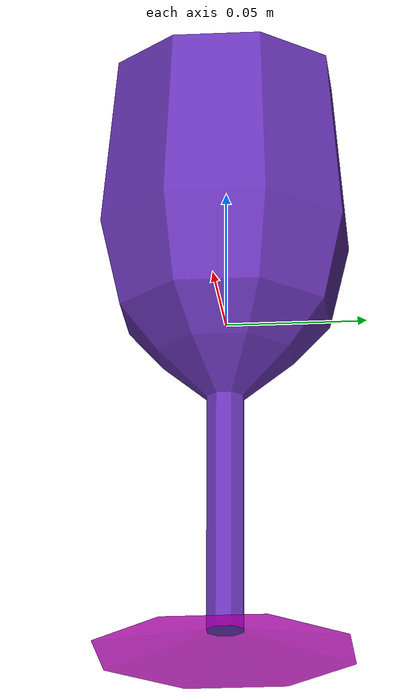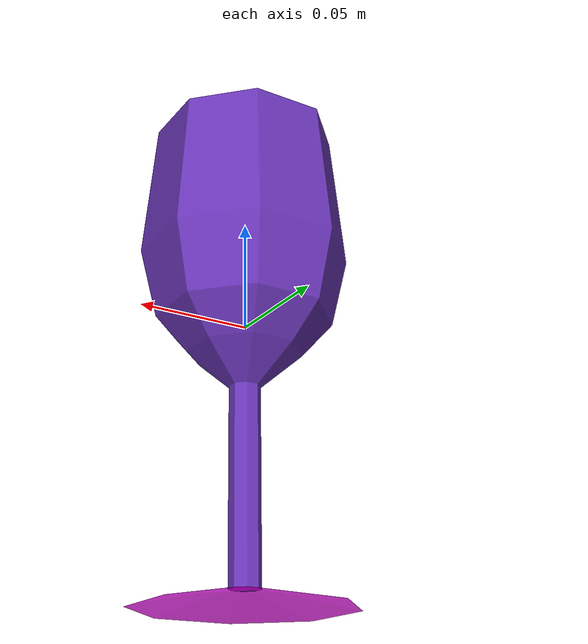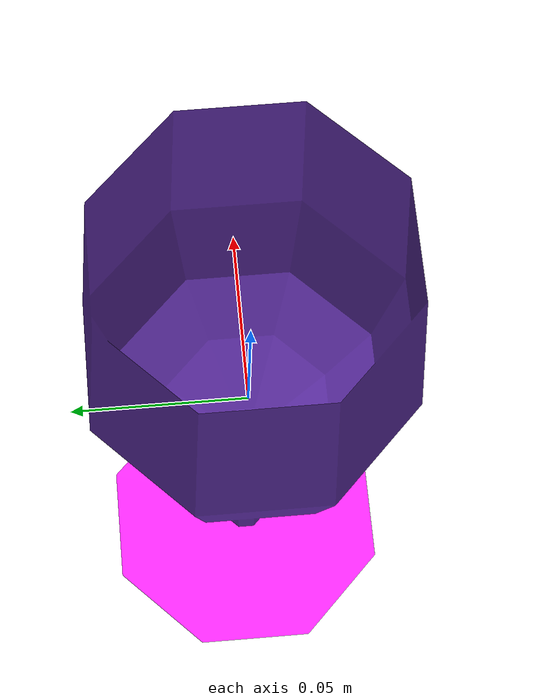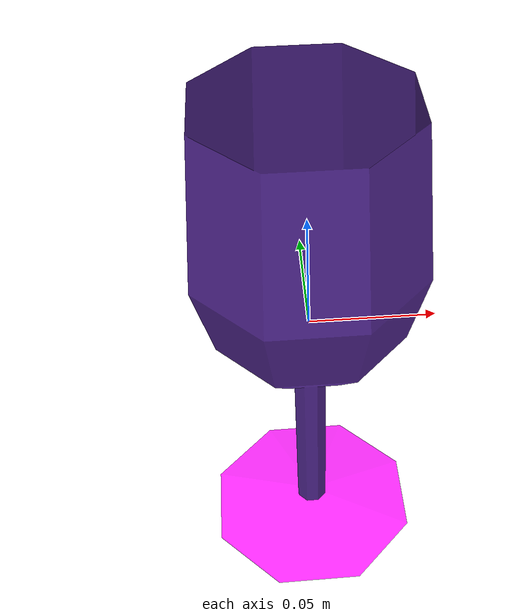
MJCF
<?xml version="1.0" encoding="utf-8"?>
<mujoco model="top_watertight_tiny">

  <asset>

    <mesh file="top_watertight_tiny.obj"/>

    <mesh file="top_watertight_tiny_collision_0.obj"/>

    <mesh file="top_watertight_tiny_collision_1.obj"/>

    <mesh file="top_watertight_tiny_collision_2.obj"/>

    <mesh file="top_watertight_tiny_collision_3.obj"/>

    <mesh file="top_watertight_tiny_collision_4.obj"/>

    <mesh file="top_watertight_tiny_collision_5.obj"/>

    <mesh file="top_watertight_tiny_collision_6.obj"/>

    <mesh file="top_watertight_tiny_collision_7.obj"/>

    <mesh file="top_watertight_tiny_collision_8.obj"/>

    <mesh file="top_watertight_tiny_collision_9.obj"/>

    <mesh file="top_watertight_tiny_collision_10.obj"/>

    <mesh file="top_watertight_tiny_collision_11.obj"/>

    <mesh file="top_watertight_tiny_collision_12.obj"/>

    <mesh file="top_watertight_tiny_collision_13.obj"/>

    <mesh file="top_watertight_tiny_collision_14.obj"/>

    <mesh file="top_watertight_tiny_collision_15.obj"/>

    <mesh file="top_watertight_tiny_collision_16.obj"/>

    <mesh file="top_watertight_tiny_collision_17.obj"/>

    <mesh file="top_watertight_tiny_collision_18.obj"/>

    <mesh file="top_watertight_tiny_collision_19.obj"/>

    <mesh file="top_watertight_tiny_collision_20.obj"/>

    <mesh file="top_watertight_tiny_collision_21.obj"/>

    <mesh file="top_watertight_tiny_collision_22.obj"/>

    <mesh file="top_watertight_tiny_collision_23.obj"/>

    <mesh file="top_watertight_tiny_collision_24.obj"/>

    <mesh file="top_watertight_tiny_collision_25.obj"/>

    <mesh file="top_watertight_tiny_collision_26.obj"/>

    <mesh file="top_watertight_tiny_collision_27.obj"/>

    <mesh file="top_watertight_tiny_collision_28.obj"/>

    <mesh file="bottom_watertight_tiny.obj"/>

    <mesh file="bottom_watertight_tiny_collision_0.obj"/>

    <mesh file="bottom_watertight_tiny_collision_1.obj"/>

    <mesh file="bottom_watertight_tiny_collision_2.obj"/>

    <mesh file="bottom_watertight_tiny_collision_3.obj"/>

    <mesh file="bottom_watertight_tiny_collision_4.obj"/>

    <mesh file="bottom_watertight_tiny_collision_5.obj"/>

    <mesh file="bottom_watertight_tiny_collision_6.obj"/>

    <mesh file="bottom_watertight_tiny_collision_7.obj"/>

  </asset>

  <worldbody>

    <body name="top_watertight_tiny">

      <freejoint/>

      <geom mesh="top_watertight_tiny" group="2" type="mesh" rgba="0.4 0.2 0.7 1" contype="0" conaffinity="0" solimp="0.90 0.95 0.001" solref="0.02 1.0" density="100" friction="0.95 0.4 0.3"/>

      <geom mesh="top_watertight_tiny_collision_0" rgba="0.5061355728934185 0.8679102062915278 0.9900890656890042 1" group="3" type="mesh" solimp="0.90 0.95 0.001" solref="0.02 1.0" density="100" friction="0.95 0.4 0.3"/>

      <geom mesh="top_watertight_tiny_collision_1" rgba="0.25180977776260116 0.8325517480377893 0.2783884431691288 1" group="3" type="mesh" solimp="0.90 0.95 0.001" solref="0.02 1.0" density="100" friction="0.95 0.4 0.3"/>

      <geom mesh="top_watertight_tiny_collision_2" rgba="0.9534853073205125 0.9107056148574261 0.5468915524469985 1" group="3" type="mesh" solimp="0.90 0.95 0.001" solref="0.02 1.0" density="100" friction="0.95 0.4 0.3"/>

      <geom mesh="top_watertight_tiny_collision_3" rgba="0.6871921209617848 0.5774473325304041 0.5099105485004797 1" group="3" type="mesh" solimp="0.90 0.95 0.001" solref="0.02 1.0" density="100" friction="0.95 0.4 0.3"/>

      <geom mesh="top_watertight_tiny_collision_4" rgba="0.13059483541182604 0.3560753646243745 0.5800725158714763 1" group="3" type="mesh" solimp="0.90 0.95 0.001" solref="0.02 1.0" density="100" friction="0.95 0.4 0.3"/>

      <geom mesh="top_watertight_tiny_collision_5" rgba="0.2823909337965186 0.7678204446008545 0.7412892407305172 1" group="3" type="mesh" solimp="0.90 0.95 0.001" solref="0.02 1.0" density="100" friction="0.95 0.4 0.3"/>

      <geom mesh="top_watertight_tiny_collision_6" rgba="0.17109070123238612 0.6475526964141758 0.17947177858328933 1" group="3" type="mesh" solimp="0.90 0.95 0.001" solref="0.02 1.0" density="100" friction="0.95 0.4 0.3"/>

      <geom mesh="top_watertight_tiny_collision_7" rgba="0.1776335603229463 0.5115044179854125 0.3849732638623129 1" group="3" type="mesh" solimp="0.90 0.95 0.001" solref="0.02 1.0" density="100" friction="0.95 0.4 0.3"/>

      <geom mesh="top_watertight_tiny_collision_8" rgba="0.3338396071940164 0.29456063181120784 0.2305261008523558 1" group="3" type="mesh" solimp="0.90 0.95 0.001" solref="0.02 1.0" density="100" friction="0.95 0.4 0.3"/>

      <geom mesh="top_watertight_tiny_collision_9" rgba="0.9267985719331097 0.21675851641262878 0.7339446497021224 1" group="3" type="mesh" solimp="0.90 0.95 0.001" solref="0.02 1.0" density="100" friction="0.95 0.4 0.3"/>

      <geom mesh="top_watertight_tiny_collision_10" rgba="0.9321378177014608 0.9757029294452854 0.03807946440777421 1" group="3" type="mesh" solimp="0.90 0.95 0.001" solref="0.02 1.0" density="100" friction="0.95 0.4 0.3"/>

      <geom mesh="top_watertight_tiny_collision_11" rgba="0.4506825925516469 0.8984429096076894 0.33763605158646304 1" group="3" type="mesh" solimp="0.90 0.95 0.001" solref="0.02 1.0" density="100" friction="0.95 0.4 0.3"/>

      <geom mesh="top_watertight_tiny_collision_12" rgba="0.5519328832623617 0.2078571398007647 0.7508963026776057 1" group="3" type="mesh" solimp="0.90 0.95 0.001" solref="0.02 1.0" density="100" friction="0.95 0.4 0.3"/>

      <geom mesh="top_watertight_tiny_collision_13" rgba="0.604514033990188 0.10948284031421163 0.5312494238734738 1" group="3" type="mesh" solimp="0.90 0.95 0.001" solref="0.02 1.0" density="100" friction="0.95 0.4 0.3"/>

      <geom mesh="top_watertight_tiny_collision_14" rgba="0.907270237851841 0.8694089232146164 0.9893086633694564 1" group="3" type="mesh" solimp="0.90 0.95 0.001" solref="0.02 1.0" density="100" friction="0.95 0.4 0.3"/>

      <geom mesh="top_watertight_tiny_collision_15" rgba="0.8418658763870013 0.9593538245166423 0.865603762373428 1" group="3" type="mesh" solimp="0.90 0.95 0.001" solref="0.02 1.0" density="100" friction="0.95 0.4 0.3"/>

      <geom mesh="top_watertight_tiny_collision_16" rgba="0.3120416399646291 0.32198699133730113 0.3155101782310109 1" group="3" type="mesh" solimp="0.90 0.95 0.001" solref="0.02 1.0" density="100" friction="0.95 0.4 0.3"/>

      <geom mesh="top_watertight_tiny_collision_17" rgba="0.1850248350248872 0.8591346777173561 0.9064556984131418 1" group="3" type="mesh" solimp="0.90 0.95 0.001" solref="0.02 1.0" density="100" friction="0.95 0.4 0.3"/>

      <geom mesh="top_watertight_tiny_collision_18" rgba="0.9585851374266061 0.6772565830913527 0.4588238486214883 1" group="3" type="mesh" solimp="0.90 0.95 0.001" solref="0.02 1.0" density="100" friction="0.95 0.4 0.3"/>

      <geom mesh="top_watertight_tiny_collision_19" rgba="0.017524486964935138 0.6549546315930781 0.4160860686676767 1" group="3" type="mesh" solimp="0.90 0.95 0.001" solref="0.02 1.0" density="100" friction="0.95 0.4 0.3"/>

      <geom mesh="top_watertight_tiny_collision_20" rgba="0.1200642874343586 0.6722257756072832 0.7846901319479702 1" group="3" type="mesh" solimp="0.90 0.95 0.001" solref="0.02 1.0" density="100" friction="0.95 0.4 0.3"/>

      <geom mesh="top_watertight_tiny_collision_21" rgba="0.1083593102763295 0.405094709531163 0.7468737563354259 1" group="3" type="mesh" solimp="0.90 0.95 0.001" solref="0.02 1.0" density="100" friction="0.95 0.4 0.3"/>

      <geom mesh="top_watertight_tiny_collision_22" rgba="0.7151730488438774 0.3231626746766981 0.0979056761069137 1" group="3" type="mesh" solimp="0.90 0.95 0.001" solref="0.02 1.0" density="100" friction="0.95 0.4 0.3"/>

      <geom mesh="top_watertight_tiny_collision_23" rgba="0.2576638243710828 0.2846448581845533 0.2603349427553462 1" group="3" type="mesh" solimp="0.90 0.95 0.001" solref="0.02 1.0" density="100" friction="0.95 0.4 0.3"/>

      <geom mesh="top_watertight_tiny_collision_24" rgba="0.9739724375790678 0.8161682018403691 0.15433912642355463 1" group="3" type="mesh" solimp="0.90 0.95 0.001" solref="0.02 1.0" density="100" friction="0.95 0.4 0.3"/>

      <geom mesh="top_watertight_tiny_collision_25" rgba="0.31605473827820785 0.21464793527813164 0.19427954088775 1" group="3" type="mesh" solimp="0.90 0.95 0.001" solref="0.02 1.0" density="100" friction="0.95 0.4 0.3"/>

      <geom mesh="top_watertight_tiny_collision_26" rgba="0.9878445467024142 0.6858891072364206 0.017106799755578606 1" group="3" type="mesh" solimp="0.90 0.95 0.001" solref="0.02 1.0" density="100" friction="0.95 0.4 0.3"/>

      <geom mesh="top_watertight_tiny_collision_27" rgba="0.8062628839347714 0.6508317776753805 0.5555150811694087 1" group="3" type="mesh" solimp="0.90 0.95 0.001" solref="0.02 1.0" density="100" friction="0.95 0.4 0.3"/>

      <geom mesh="top_watertight_tiny_collision_28" rgba="0.9697837665604585 0.9887293029124766 0.2778282487606486 1" group="3" type="mesh" solimp="0.90 0.95 0.001" solref="0.02 1.0" density="100" friction="0.95 0.4 0.3"/>

      <body name="bottom_watertight_tiny">

        <geom mesh="bottom_watertight_tiny" group="2" type="mesh" rgba="1 0 1 0.8" contype="0" conaffinity="0" solimp="0.90 0.95 0.001" solref="0.02 1.0" density="100" friction="0.95 0.4 0.3"/>

        <geom mesh="bottom_watertight_tiny_collision_0" rgba="0.6314106801659956 0.1999537226633229 0.04367236365176408 1" group="3" type="mesh" solimp="0.90 0.95 0.001" solref="0.02 1.0" density="100" friction="0.95 0.4 0.3"/>

        <geom mesh="bottom_watertight_tiny_collision_1" rgba="0.3376287619610858 0.05676400421257011 0.3946262800724707 1" group="3" type="mesh" solimp="0.90 0.95 0.001" solref="0.02 1.0" density="100" friction="0.95 0.4 0.3"/>

        <geom mesh="bottom_watertight_tiny_collision_2" rgba="0.8177034913042877 0.41774409011979485 0.20005066704164598 1" group="3" type="mesh" solimp="0.90 0.95 0.001" solref="0.02 1.0" density="100" friction="0.95 0.4 0.3"/>

        <geom mesh="bottom_watertight_tiny_collision_3" rgba="0.6440111376771793 0.9565767175084144 0.8851302876745779 1" group="3" type="mesh" solimp="0.90 0.95 0.001" solref="0.02 1.0" density="100" friction="0.95 0.4 0.3"/>

        <geom mesh="bottom_watertight_tiny_collision_4" rgba="0.2563998732695485 0.49045204348459703 0.6599633833332343 1" group="3" type="mesh" solimp="0.90 0.95 0.001" solref="0.02 1.0" density="100" friction="0.95 0.4 0.3"/>

        <geom mesh="bottom_watertight_tiny_collision_5" rgba="0.6087178066960139 0.5802991022827659 0.3536518046503532 1" group="3" type="mesh" solimp="0.90 0.95 0.001" solref="0.02 1.0" density="100" friction="0.95 0.4 0.3"/>

        <geom mesh="bottom_watertight_tiny_collision_6" rgba="0.17447299473612843 0.7633758455335102 0.9931426743714797 1" group="3" type="mesh" solimp="0.90 0.95 0.001" solref="0.02 1.0" density="100" friction="0.95 0.4 0.3"/>

        <geom mesh="bottom_watertight_tiny_collision_7" rgba="0.558048585606055 0.17529072858194628 0.5973703647731613 1" group="3" type="mesh" solimp="0.90 0.95 0.001" solref="0.02 1.0" density="100" friction="0.95 0.4 0.3"/>

        <site name="bottom_watertight_tiny_touch_site" pos="0 0 0" size="0.2" rgba="1 0 0 0." type="sphere"/>
      </body>

      <site name="top_watertight_tiny_touch_site" pos="0 0 0" size="0.2" rgba="1 0 0 0." type="sphere"/>
    </body>

  </worldbody>

  <sensor>
    <touch name="top_watertight_tiny_touch" site="top_watertight_tiny_touch_site"/>
    <touch name="bottom_watertight_tiny_touch" site="bottom_watertight_tiny_touch_site"/>
  </sensor>
</mujoco>
